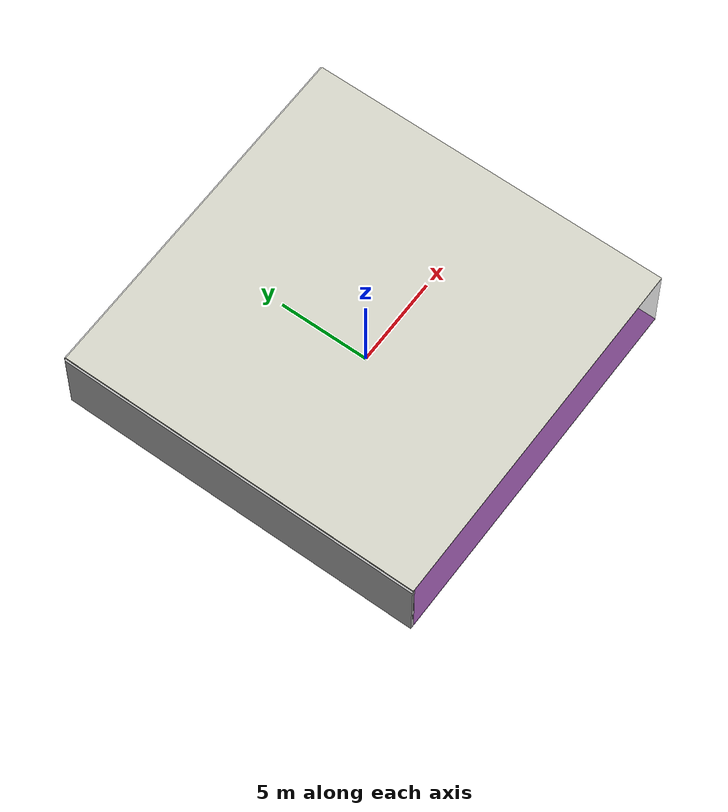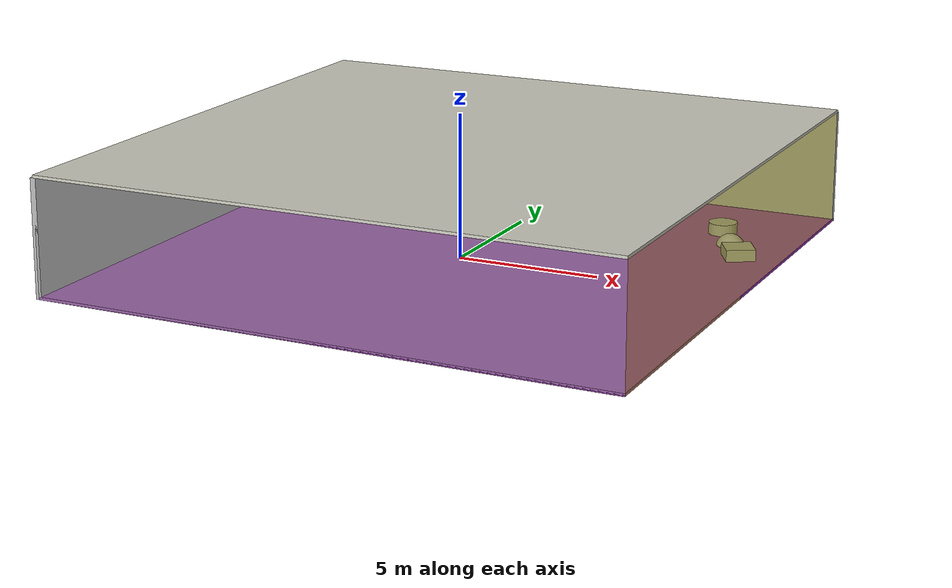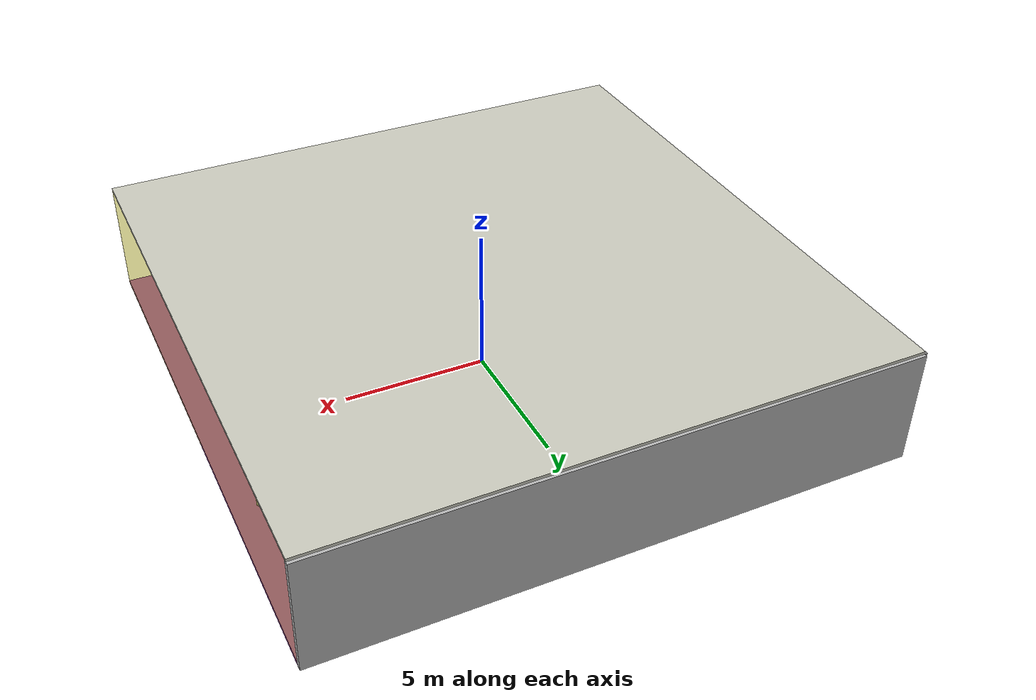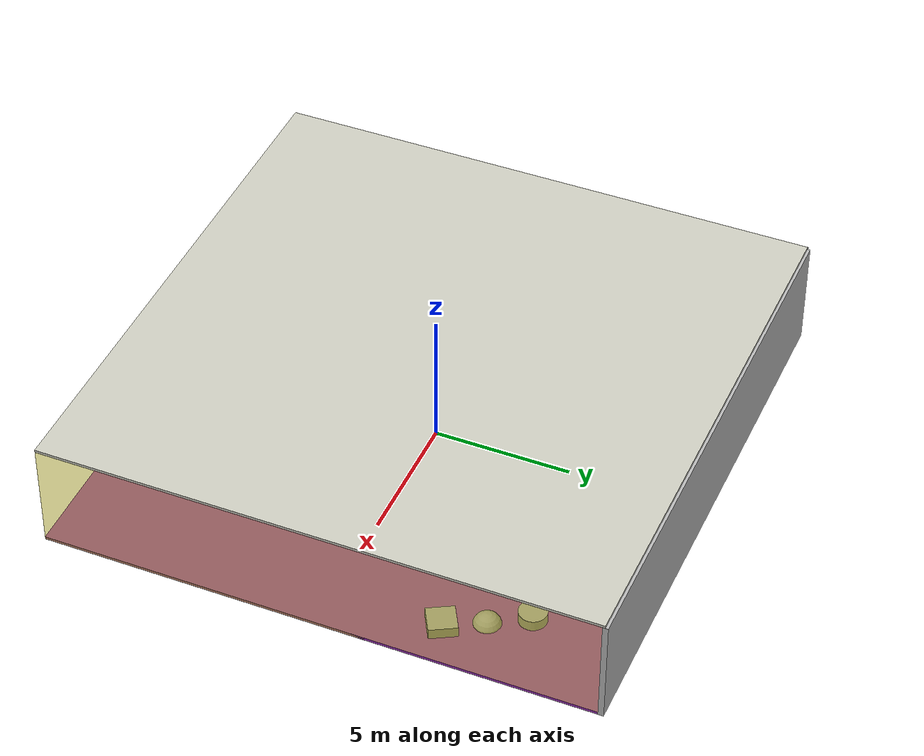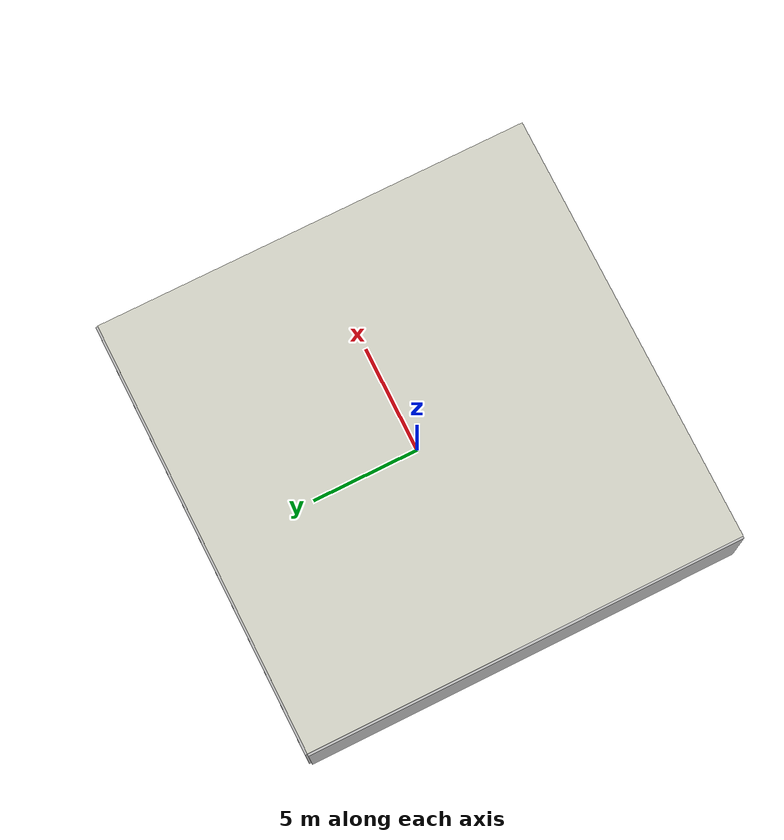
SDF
<sdf version="1.4">
 <world name="default">
  <physics type="ode">
   <max_step_size>0.001</max_step_size>
   <real_time_factor>1</real_time_factor>
   <real_time_update_rate>1000</real_time_update_rate>
   <gravity>0 0 -9.8</gravity>
  </physics>
  <scene><ambient>0.4 0.4 0.4 1</ambient><background>0.7 0.7 0.7 1</background><shadows>1</shadows></scene>
  <model name="Surrounding">
   <static>1</static>
   <link name="Ceiling">
    <collision name="Ceiling_Collision"><geometry><box><size>20 20 0.1</size></box></geometry></collision>
    <visual name="Ceiling_Visual">
     <geometry><box><size>20 20 0.1</size></box></geometry>
     <material>
      <script><uri>file://media/materials/scripts/gazebo.material</uri><name>Gazebo/PaintedWall</name></script>
     </material>
    </visual>
    <pose>0 0 4.05 0 0 0</pose>
   </link>
   <link name="Wall_South">
    <collision name="Wall_South_Collision">
     <geometry><box><size>20 0 4</size></box></geometry>
     <pose>0 0 2 0 -0 0</pose>
    </collision>
    <visual name="Wall_South_Visual">
     <pose>0 0 2 0 -0 0</pose>
     <geometry><box><size>20 0 4</size></box></geometry>
     <material>
      <script><uri>file://media/materials/scripts/gazebo.material</uri><name>Gazebo/GreyTransparent</name></script>
     </material>
    </visual>
    <velocity_decay><linear>0</linear><angular>0</angular></velocity_decay>
    <pose>0 -10 0 0 -0 0</pose>
   </link>
   <link name="Wall_East">
    <collision name="Wall_21_Collision">
     <geometry><box><size>20 0 4</size></box></geometry>
     <pose>0 0 2 0 -0 0</pose>
    </collision>
    <visual name="Wall_21_Visual">
     <pose>0 0 2 0 -0 0</pose>
     <geometry><box><size>20 0 4</size></box></geometry>
     <material>
      <script>
       <uri>file://media/materials/scripts/gazebo.material</uri>
       <name>Gazebo/YellowTransparent</name>
      </script>
     </material>
    </visual>
    <velocity_decay><linear>0</linear><angular>0</angular></velocity_decay>
    <pose>10 0 0 0 -0 1.5708</pose>
   </link>
   <link name="Wall_North">
    <collision name="Wall_22_Collision">
     <geometry><box><size>20 0.2 4</size></box></geometry>
     <pose>0 0 2 0 -0 0</pose>
    </collision>
    <visual name="Wall_22_Visual">
     <pose>0 0 2 0 -0 0</pose>
     <geometry><box><size>20 0.2 4</size></box></geometry>
     <material>
      <script><uri>file://media/materials/scripts/gazebo.material</uri><name>Gazebo/CloudySky</name></script>
     </material>
    </visual>
    <velocity_decay><linear>0</linear><angular>0</angular></velocity_decay>
    <pose>0 10 0 0 -0 0</pose>
   </link>
   <link name="Wall_West">
    <collision name="Wall_23_Collision">
     <geometry><box><size>20 0.2 4</size></box></geometry>
     <pose>0 0 2 0 -0 0</pose>
    </collision>
    <visual name="Wall_23_Visual">
     <pose>0 0 2 0 -0 0</pose>
     <geometry><box><size>20 0.2 4</size></box></geometry>
     <material>
      <script><uri>file://media/materials/scripts/gazebo.material</uri><name>Gazebo/Pioneer2Body</name></script>
     </material>
    </visual>
    <velocity_decay><linear>0</linear><angular>0</angular></velocity_decay>
    <pose>-10 0 0 0 0 -1.5708</pose>
   </link>
   <link name="Ground_link">
    <collision name="collision">
     <pose>0 0 .05 0 -0 0</pose>
     <geometry><box><size>20 20 0.1</size></box></geometry>
    </collision>
    <visual name="visual">
     <pose>0 0 .05 0 -0 0</pose>
     <geometry><box><size>20 20 0.1</size></box></geometry>
     <material>
      <script><uri>file://media/materials/scripts/gazebo.material</uri><name>Gazebo/PurpleGlow</name></script>
     </material>
    </visual>
   </link>
   <static>1</static>
  </model>
  <spherical_coordinates>
   <surface_model>EARTH_WGS84</surface_model>
   <latitude_deg>0</latitude_deg>
   <longitude_deg>0</longitude_deg>
   <elevation>0</elevation>
   <heading_deg>0</heading_deg>
  </spherical_coordinates>
  <light name="lightball_0" type="diffuse">
   <diffuse>0.8 0.8 0.8 1</diffuse>
   <specular>0.2 0.2 0.2 1</specular>
   <attenuation>
    <range>100</range>
    <constant>0.7</constant>
    <linear>0.01</linear>
    <quadratic>0.001</quadratic>
   </attenuation>
   <direction>-0.5 0.1 -0.9</direction>
   <pose>-7.87424489159 -9.94035914555 0.866984903511 0 0 0</pose>
  </light>
  <include>
   <uri>model://construction_cone</uri>
   <pose>-2.19395783566 7.34445684481 0 0 0 0.369485387408</pose>
  </include>
  <include>
   <uri>model://construction_cone</uri>
   <pose>3.76926970257 4.01224357551 0 0 0 0.640108381259</pose>
  </include>
  <include>
   <uri>model://textured_shapes</uri>
   <pose>7.79755386494 5.18964457943 0 0 0 0.509466183128</pose>
  </include>
 </world>
</sdf>

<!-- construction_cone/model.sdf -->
<sdf version="1.5">
  <model name="Construction Cone">
    <link name="link">
      <collision name="collision">
        <geometry>
          <mesh>
            <scale>10 10 10</scale>
            <uri>file://isr-testbed/construction_cone/meshes/construction_cone.dae</uri>
          </mesh>
        </geometry>
      </collision>
      <visual name="visual">
        <geometry>
          <mesh>
            <scale>10 10 10</scale>
            <uri>file://isr-testbed/construction_cone/meshes/construction_cone.dae</uri>
          </mesh>
        </geometry>
      </visual>
    </link>
  </model>
</sdf>

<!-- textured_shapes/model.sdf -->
<sdf version="1.6">
  <model name="textured_shapes">
    <pose>0 0 0.5 0 0 0</pose>
    <link name="box">
      <pose>0 -1.5 0 0 0 0</pose>
      <collision name="collision">
        <geometry>
          <box>
            <size>1 1 1</size>
          </box>
        </geometry>
      </collision>
      <visual name="visual">
        <geometry>
          <box>
            <size>1 1 1</size>
          </box>
        </geometry>
        <material>
          <script>
            <uri>model://../model_source/models/textured_shapes/materials/scripts</uri>
            <uri>model://../model_source/models/textured_shapes/materials/textures</uri>
            <name>TexturedShape/Squares</name>
          </script>
        </material>
      </visual>
    </link>
    <link name="sphere">
      <collision name="collision">
        <geometry>
          <sphere>
            <radius>0.5</radius>
          </sphere>
        </geometry>
      </collision>
      <visual name="visual">
        <geometry>
          <sphere>
            <radius>0.5</radius>
          </sphere>
        </geometry>
        <material>
          <script>
            <uri>model://../model_source/models/textured_shapes/materials/scripts</uri>
            <uri>model://../model_source/models/textured_shapes/materials/textures</uri>
            <name>TexturedShape/Squares</name>
          </script>
        </material>
      </visual>
    </link>
    <link name="cylinder">
      <pose>0 1.5 0 0 0 0</pose>
      <collision name="collision">
        <geometry>
          <cylinder>
            <radius>0.5</radius>
            <length>1</length>
          </cylinder>
        </geometry>
      </collision>
      <visual name="visual">
        <geometry>
          <cylinder>
            <radius>0.5</radius>
            <length>1</length>
          </cylinder>
        </geometry>
        <material>
          <script>
            <uri>model://../model_source/models/textured_shapes/materials/scripts</uri>
            <uri>model://../model_source/models/textured_shapes/materials/textures</uri>
            <name>TexturedShape/Squares</name>
          </script>
        </material>
      </visual>
    </link>
  </model>
</sdf>
